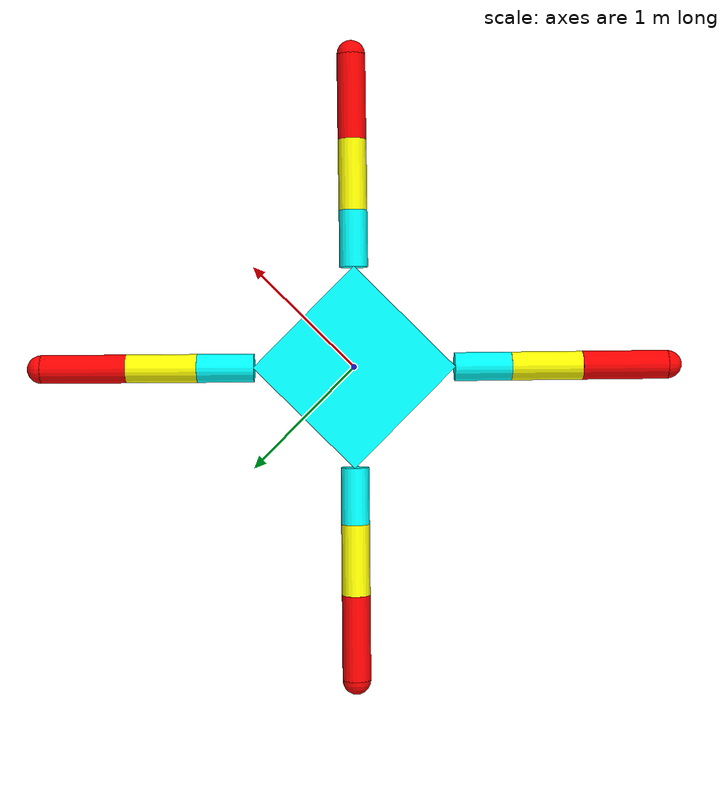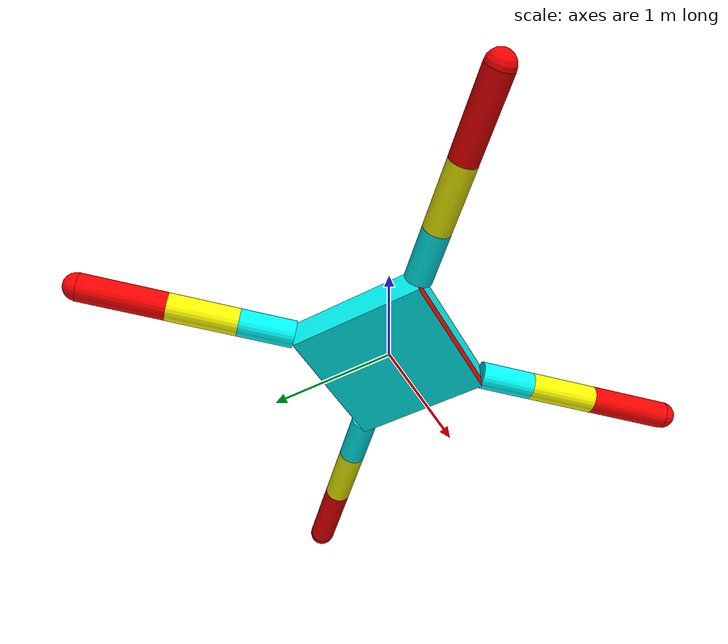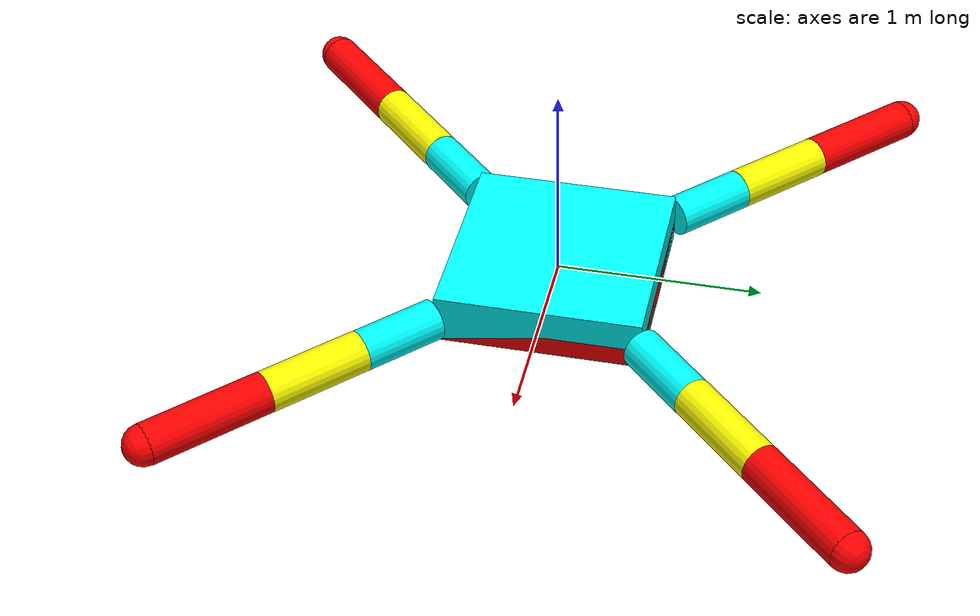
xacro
<?xml version="1.0"?>
<robot xmlns:xacro="http://www.ros.org/wiki/xacro" name="spider">
	<xacro:property name="len_1" value="0.4" />
	<xacro:property name="len_2" value="0.5" />
	<xacro:property name="len_3" value="0.6" />
	<xacro:property name="rad" value="0.1" />
	<xacro:property name="pi" value="3.1457" />
	<xacro:property name="len_sq" value="1" />

	<xacro:macro name="leg" params="leg_name">

		<link name="${leg_name}+'_1'">
			<visual>
				<geometry>
					<cylinder length="${len_1}" radius="${rad}"/>
				</geometry>
				<origin rpy="0 ${pi/2} 0" xyz="${len_1/2} 0 0"/>
				<material name="cyan">
					<color rgba="0 1 1 1"/>
				</material>
			</visual>
		</link>
		<link name="${leg_name}+'_2'">
			<visual>
				<geometry>
					<cylinder length="${len_2}" radius="${rad}"/>
				</geometry>
				<origin rpy="0 ${pi/2} 0" xyz="${len_2/2} 0 0"/>
				<material name="yellow">
					<color rgba="1 1 0 1"/>
				</material>
			</visual>
			<collision>
				<geometry>
					<cylinder length="${len_2}" radius="${rad}"/>
				</geometry>
				<origin rpy="0 ${pi/2} 0" xyz="${len_2/2} 0 0"/>
				<material name="yellow">
					<color rgba="1 1 0 1"/>
				</material>
			</collision>
		</link>
		<link name="${leg_name}+'_3'">
			<visual>
				<geometry>
					<cylinder length="${len_3}" radius="${rad}"/>
				</geometry>
				<origin rpy="0 ${pi/2} 0" xyz="${len_3/2} 0 0"/>
				<material name="red">
					<color rgba="1 0 0 1"/>
				</material>
			</visual>
			<collision>
				<geometry>
					<cylinder length="${len_3}" radius="${rad}"/>
				</geometry>
				<origin rpy="0 ${pi/2} 0" xyz="${len_3/2} 0 0"/>
				<material name="red">
					<color rgba="1 0 0 1"/>
				</material>
			</collision>
		</link>
		<link name="${leg_name}+'_4'">
			<visual>
				<geometry>
					<sphere radius="${rad}"/>
				</geometry>
				<origin rpy="0 ${pi/2} 0" xyz="${len_3/2} 0 0"/>
				<material name="red">
					<color rgba="1 0 0 1"/>
				</material>
			</visual>
			<collision>
				<geometry>
					<sphere radius="${rad}"/>
				</geometry>
				<origin rpy="0 ${pi/2} 0" xyz="${len_3/2} 0 0"/>
				<material name="red">
					<color rgba="1 0 0 1"/>
				</material>
			</collision>
		</link>

		<joint name="${leg_name}+'_1_2'" type="revolute">
			<parent link="${leg_name}+'_1'"/>
			<child link="${leg_name}+'_2'"/>
			<origin rpy="0 0 0" xyz="${len_1} 0 0"/>
			<axis xyz="0 1 0"/>
			<limit effort="300" velocity="0.1" lower="-1.57" upper="1.57"/>
		</joint>
		<joint name="${leg_name}+'_2_3'" type="revolute">
			<parent link="${leg_name}+'_2'"/>
			<child link="${leg_name}+'_3'"/>
			<origin rpy="0 0 0" xyz="${len_2} 0 0"/>
			<axis xyz="0 1 0"/>
			<limit effort="300" velocity="0.1" lower="-1.57" upper="1.57"/>
		</joint>
		<joint name="${leg_name}+'_3_4'" type="fixed">
			<parent link="${leg_name}+'_3'"/>
			<child link="${leg_name}+'_4'"/>
			<origin xyz="${(len_3)/2} 0 0"/>
		</joint>

	</xacro:macro>

	<xacro:leg leg_name="a"/>
	<xacro:leg leg_name="b"/>
	<xacro:leg leg_name="c"/>
	<xacro:leg leg_name="d"/>

	<link name="base_link">
		<visual>
			<geometry>
				<box size="${len_sq} ${len_sq} ${len_sq/4}"/>
			</geometry>
			<origin rpy="0 0 0" xyz="0 0 0"/>
			<material name="cyan">
				<color rgba="0 1 1 1"/>
			</material>
		</visual>
	</link>
	<link name="base_link2">
		<visual>
			<geometry>
				<box size="${len_sq} ${len_sq} ${len_sq/10}"/>
			</geometry>
			<origin rpy="0 0 0" xyz="0 0 0"/>
			<material name="cyan">
				<color rgba="1 0 0 1"/>
			</material>
		</visual>
		<collision>
			<geometry>
				<box size="${len_sq} ${len_sq} ${len_sq/10}"/>
			</geometry>
			<origin rpy="0 0 0" xyz="0 0 0"/>
			<material name="cyan">
				<color rgba="1 0 0 1"/>
			</material>
		</collision>
	</link>

	<joint name="base" type="fixed">
		<parent link="base_link"/>
		<child link="base_link2"/>
		<origin xyz="0 0 ${-3*len_sq/40}"/>
	</joint>

	<joint name="joint_0_a" type="revolute">
		<parent link="base_link"/>
		<child link="a+'_1'"/>
		<origin rpy="0 0 ${pi/4}" xyz="${len_sq/2} ${len_sq/2} 0"/>
		<axis xyz="0 0 1"/>
		<limit effort="300" velocity="0.1" lower="-1.57" upper="1.57"/>
	</joint>
	<joint name="joint_0_b" type="revolute">
		<parent link="base_link"/>
		<child link="b+'_1'"/>
		<origin rpy="0 0 ${3*pi/4}" xyz="${-len_sq/2} ${len_sq/2} 0"/>
		<axis xyz="0 0 1"/>
		<limit effort="300" velocity="0.1" lower="-1.57" upper="1.57"/>
	</joint>
	<joint name="joint_0_c" type="revolute">
		<parent link="base_link"/>
		<child link="c+'_1'"/>
		<origin rpy="0 0 ${5*pi/4}" xyz="${-len_sq/2} ${-len_sq/2} 0"/>
		<axis xyz="0 0 1"/>
		<limit effort="300" velocity="0.1" lower="-1.57" upper="1.57"/>
	</joint>
	<joint name="joint_0_d" type="revolute">
		<parent link="base_link"/>
		<child link="d+'_1'"/>
		<origin rpy="0 0 ${7*pi/4}" xyz="${len_sq/2} ${-len_sq/2} 0"/>
		<axis xyz="0 0 1"/>
		<limit effort="300" velocity="0.1" lower="-1.57" upper="1.57"/>
	</joint>

</robot>
